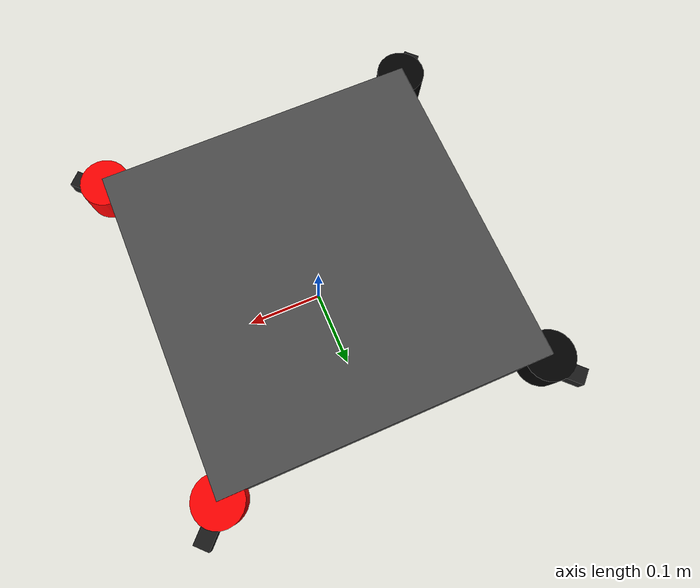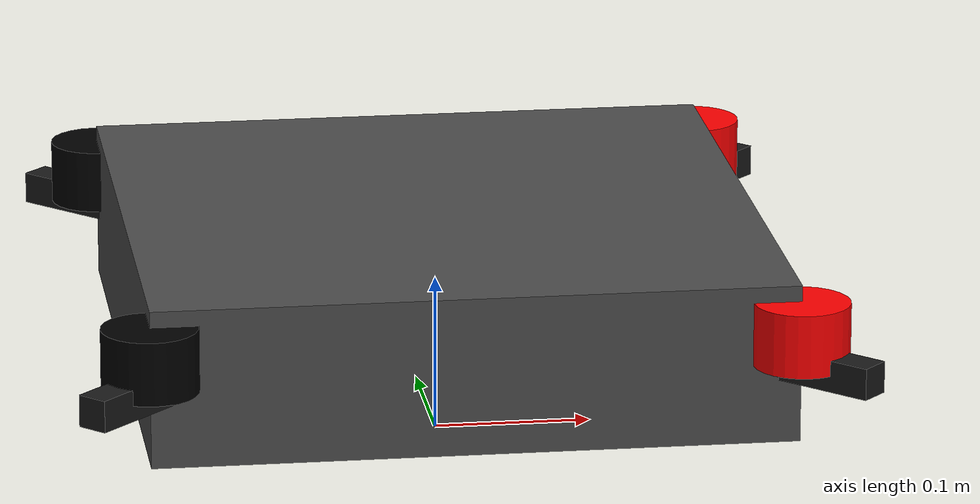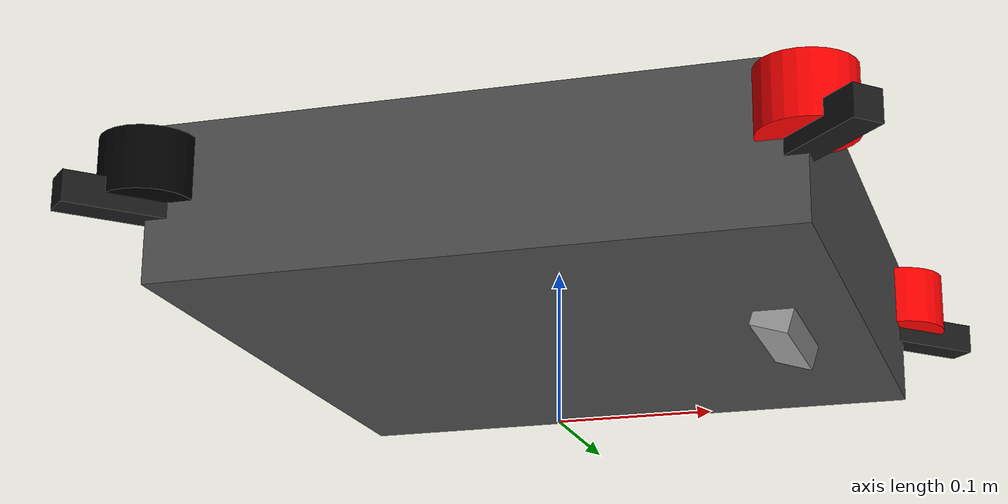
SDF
<?xml version="1.0" ?>
<sdf version="1.6">
  <model name="rescue_drone">
    <pose>0 0 0.1 0 0 0</pose>

    <!-- Base link (drone body) -->
    <link name="base_link">
      <inertial>
        <mass>1.5</mass>
        <inertia>
          <ixx>0.029125</ixx>
          <ixy>0</ixy>
          <ixz>0</ixz>
          <iyy>0.029125</iyy>
          <iyz>0</iyz>
          <izz>0.055225</izz>
        </inertia>
      </inertial>

      <!-- Main body collision -->
      <collision name="body_collision">
        <geometry>
          <box><size>0.4 0.4 0.15</size></box>
        </geometry>
      </collision>

      <!-- Main body visual -->
      <visual name="body_visual">
        <geometry>
          <box><size>0.4 0.4 0.1</size></box>
        </geometry>
        <material>
          <ambient>0.2 0.2 0.2 1</ambient>
          <diffuse>0.3 0.3 0.3 1</diffuse>
        </material>
      </visual>

      <!-- Arms -->
      <visual name="arm_front_left">
        <pose>0.15 0.15 0 0 0 0.785</pose>
        <geometry><box><size>0.25 0.02 0.02</size></box></geometry>
        <material><ambient>0.1 0.1 0.1 1</ambient></material>
      </visual>

      <visual name="arm_front_right">
        <pose>0.15 -0.15 0 0 0 -0.785</pose>
        <geometry><box><size>0.25 0.02 0.02</size></box></geometry>
        <material><ambient>0.1 0.1 0.1 1</ambient></material>
      </visual>

      <visual name="arm_back_left">
        <pose>-0.15 0.15 0 0 0 -0.785</pose>
        <geometry><box><size>0.25 0.02 0.02</size></box></geometry>
        <material><ambient>0.1 0.1 0.1 1</ambient></material>
      </visual>

      <visual name="arm_back_right">
        <pose>-0.15 -0.15 0 0 0 0.785</pose>
        <geometry><box><size>0.25 0.02 0.02</size></box></geometry>
        <material><ambient>0.1 0.1 0.1 1</ambient></material>
      </visual>

      <!-- Motor mounts -->
      <visual name="motor_fl">
        <pose>0.2 0.2 0.02 0 0 0</pose>
        <geometry><cylinder><radius>0.03</radius><length>0.04</length></cylinder></geometry>
        <material><ambient>1 0 0 1</ambient></material>
      </visual>

      <visual name="motor_fr">
        <pose>0.2 -0.2 0.02 0 0 0</pose>
        <geometry><cylinder><radius>0.03</radius><length>0.04</length></cylinder></geometry>
        <material><ambient>1 0 0 1</ambient></material>
      </visual>

      <visual name="motor_bl">
        <pose>-0.2 0.2 0.02 0 0 0</pose>
        <geometry><cylinder><radius>0.03</radius><length>0.04</length></cylinder></geometry>
        <material><ambient>0 0 0 1</ambient></material>
      </visual>

      <visual name="motor_br">
        <pose>-0.2 -0.2 0.02 0 0 0</pose>
        <geometry><cylinder><radius>0.03</radius><length>0.04</length></cylinder></geometry>
        <material><ambient>0 0 0 1</ambient></material>
      </visual>
    </link>

    <!-- Camera link (Intel RealSense D435) -->
    <link name="camera_link">
      <pose relative_to="base_link">0.15 0 -0.05 0 0.3 0</pose>
      <inertial>
        <mass>0.072</mass>
        <inertia>
          <ixx>0.00003881</ixx>
          <ixy>0</ixy>
          <ixz>0</ixz>
          <iyy>0.00000478</iyy>
          <iyz>0</iyz>
          <izz>0.00003879</izz>
        </inertia>
      </inertial>

      <collision name="camera_collision">
        <geometry>
          <box><size>0.025 0.09 0.025</size></box>
        </geometry>
      </collision>

      <visual name="camera_visual">
        <geometry>
          <box><size>0.025 0.09 0.025</size></box>
        </geometry>
        <material>
          <ambient>0.5 0.5 0.5 1</ambient>
          <diffuse>0.6 0.6 0.6 1</diffuse>
        </material>
      </visual>

      <!-- RGB Camera sensor -->
      <sensor name="color_camera" type="camera">
        <pose>0 0 0 0 0 0</pose>
        <update_rate>30</update_rate>
        <camera>
          <horizontal_fov>1.518</horizontal_fov> <!-- 87 degrees -->
          <image>
            <width>640</width>
            <height>480</height>
            <format>R8G8B8</format>
          </image>
          <clip>
            <near>0.1</near>
            <far>100</far>
          </clip>
        </camera>
        <plugin name="camera_controller" filename="libgazebo_ros_camera.so">
          <ros>
            <remapping>image_raw:=camera/color/image_raw</remapping>
            <remapping>camera_info:=camera/color/camera_info</remapping>
          </ros>
          <frame_name>camera_link</frame_name>
        </plugin>
      </sensor>

      <!-- Depth Camera sensor -->
      <sensor name="depth_camera" type="depth">
        <pose>0 0 0 0 0 0</pose>
        <update_rate>30</update_rate>
        <camera>
          <horizontal_fov>1.518</horizontal_fov>
          <image>
            <width>640</width>
            <height>480</height>
            <format>R_FLOAT32</format>
          </image>
          <clip>
            <near>0.3</near>
            <far>10.0</far>
          </clip>
        </camera>
        <plugin name="depth_camera_controller" filename="libgazebo_ros_camera.so">
          <ros>
            <remapping>image_raw:=camera/depth/image_raw</remapping>
            <remapping>camera_info:=camera/depth/camera_info</remapping>
            <remapping>points:=camera/depth/points</remapping>
          </ros>
          <frame_name>camera_link</frame_name>
          <min_depth>0.3</min_depth>
          <max_depth>10.0</max_depth>
        </plugin>
      </sensor>
    </link>

    <!-- Camera joint -->
    <joint name="camera_joint" type="fixed">
      <parent>base_link</parent>
      <child>camera_link</child>
    </joint>

    <!-- IMU sensor -->
    <link name="imu_link">
      <pose relative_to="base_link">0 0 0 0 0 0</pose>
      <inertial>
        <mass>0.001</mass>
        <inertia>
          <ixx>0.000001</ixx>
          <ixy>0</ixy>
          <ixz>0</ixz>
          <iyy>0.000001</iyy>
          <iyz>0</iyz>
          <izz>0.000001</izz>
        </inertia>
      </inertial>

      <sensor name="imu_sensor" type="imu">
        <always_on>true</always_on>
        <update_rate>250</update_rate>
        <plugin name="imu_plugin" filename="libgazebo_ros_imu_sensor.so">
          <ros>
            <remapping>~/out:=imu</remapping>
          </ros>
          <frame_name>imu_link</frame_name>
        </plugin>
      </sensor>
    </link>

    <joint name="imu_joint" type="fixed">
      <parent>base_link</parent>
      <child>imu_link</child>
    </joint>

  </model>
</sdf>
